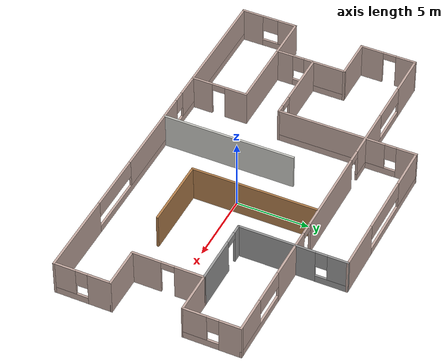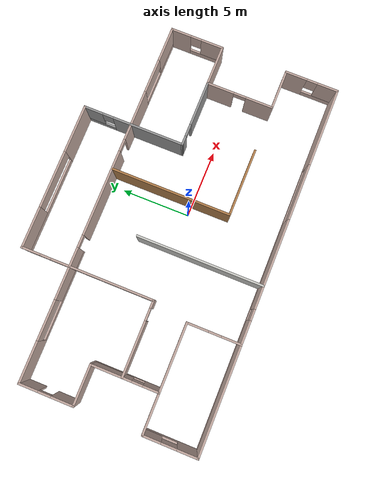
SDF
<?xml version='1.0'?>
<sdf version='1.6'>
  <model name='single_floor'>
    <pose frame=''>-1.52056 1.42909 0 0 -0 0</pose>
    <link name='Wall_12'>
      <pose frame=''>0 4.5203 0 0 -0 0</pose>
      <visual name='Wall_12_Visual_0'>
        <pose frame=''>-11.8654 0 1.25 0 -0 0</pose>
        <geometry>
          <box>
            <size>3.0192 0.15 2.5</size>
          </box>
        </geometry>
        <material>
          <script>
            <uri>file://media/materials/scripts/gazebo.material</uri>
            <name>Gazebo/Grey</name>
          </script>
          <ambient>0.760784 0.662745 0.627451 1</ambient>
        </material>
        <meta>
          <layer>0</layer>
        </meta>
      </visual>
      <collision name='Wall_12_Collision_0'>
        <geometry>
          <box>
            <size>3.0192 0.15 2.5</size>
          </box>
        </geometry>
        <pose frame=''>-11.8654 0 1.25 0 -0 0</pose>
      </collision>
      <visual name='Wall_12_Visual_1'>
        <pose frame=''>0.396367 0 1.25 0 -0 0</pose>
        <geometry>
          <box>
            <size>6.35864 0.15 2.5</size>
          </box>
        </geometry>
        <material>
          <script>
            <uri>file://media/materials/scripts/gazebo.material</uri>
            <name>Gazebo/Grey</name>
          </script>
          <ambient>0.760784 0.662745 0.627451 1</ambient>
        </material>
        <meta>
          <layer>0</layer>
        </meta>
      </visual>
      <collision name='Wall_12_Collision_1'>
        <geometry>
          <box>
            <size>6.35864 0.15 2.5</size>
          </box>
        </geometry>
        <pose frame=''>0.396367 0 1.25 0 -0 0</pose>
      </collision>
      <visual name='Wall_12_Visual_2'>
        <pose frame=''>6.35303 0 1.25 0 -0 0</pose>
        <geometry>
          <box>
            <size>3.75468 0.15 2.5</size>
          </box>
        </geometry>
        <material>
          <script>
            <uri>file://media/materials/scripts/gazebo.material</uri>
            <name>Gazebo/Grey</name>
          </script>
          <ambient>0.760784 0.662745 0.627451 1</ambient>
        </material>
        <meta>
          <layer>0</layer>
        </meta>
      </visual>
      <collision name='Wall_12_Collision_2'>
        <geometry>
          <box>
            <size>3.75468 0.15 2.5</size>
          </box>
        </geometry>
        <pose frame=''>6.35303 0 1.25 0 -0 0</pose>
      </collision>
      <visual name='Wall_12_Visual_3'>
        <pose frame=''>-7.01938 0 0.25 0 -0 0</pose>
        <geometry>
          <box>
            <size>6.67285 0.15 0.5</size>
          </box>
        </geometry>
        <material>
          <script>
            <uri>file://media/materials/scripts/gazebo.material</uri>
            <name>Gazebo/Grey</name>
          </script>
          <ambient>0.760784 0.662745 0.627451 1</ambient>
        </material>
        <meta>
          <layer>0</layer>
        </meta>
      </visual>
      <collision name='Wall_12_Collision_3'>
        <geometry>
          <box>
            <size>6.67285 0.15 0.5</size>
          </box>
        </geometry>
        <pose frame=''>-7.01938 0 0.25 0 -0 0</pose>
      </collision>
      <visual name='Wall_12_Visual_4'>
        <pose frame=''>10.8027 0 0.25 0 -0 0</pose>
        <geometry>
          <box>
            <size>5.14463 0.15 0.5</size>
          </box>
        </geometry>
        <material>
          <script>
            <uri>file://media/materials/scripts/gazebo.material</uri>
            <name>Gazebo/Grey</name>
          </script>
          <ambient>0.760784 0.662745 0.627451 1</ambient>
        </material>
        <meta>
          <layer>0</layer>
        </meta>
      </visual>
      <collision name='Wall_12_Collision_4'>
        <geometry>
          <box>
            <size>5.14463 0.15 0.5</size>
          </box>
        </geometry>
        <pose frame=''>10.8027 0 0.25 0 -0 0</pose>
      </collision>
      <visual name='Wall_12_Visual_5'>
        <pose frame=''>-5.57131 0 1.5 0 -0 0</pose>
        <geometry>
          <box>
            <size>3.77672 0.15 2</size>
          </box>
        </geometry>
        <material>
          <script>
            <uri>file://media/materials/scripts/gazebo.material</uri>
            <name>Gazebo/Grey</name>
          </script>
          <ambient>0.760784 0.662745 0.627451 1</ambient>
        </material>
        <meta>
          <layer>0</layer>
        </meta>
      </visual>
      <collision name='Wall_12_Collision_5'>
        <geometry>
          <box>
            <size>3.77672 0.15 2</size>
          </box>
        </geometry>
        <pose frame=''>-5.57131 0 1.5 0 -0 0</pose>
      </collision>
      <visual name='Wall_12_Visual_6'>
        <pose frame=''>-5.57131 0 1.5 0 -0 0</pose>
        <geometry>
          <box>
            <size>3.77672 0.15 2</size>
          </box>
        </geometry>
        <material>
          <script>
            <uri>file://media/materials/scripts/gazebo.material</uri>
            <name>Gazebo/Grey</name>
          </script>
          <ambient>0.760784 0.662745 0.627451 1</ambient>
        </material>
        <meta>
          <layer>0</layer>
        </meta>
      </visual>
      <collision name='Wall_12_Collision_6'>
        <geometry>
          <box>
            <size>3.77672 0.15 2</size>
          </box>
        </geometry>
        <pose frame=''>-5.57131 0 1.5 0 -0 0</pose>
      </collision>
      <visual name='Wall_12_Visual_7'>
        <pose frame=''>12.0657 0 1.5 0 -0 0</pose>
        <geometry>
          <box>
            <size>2.61859 0.15 2</size>
          </box>
        </geometry>
        <material>
          <script>
            <uri>file://media/materials/scripts/gazebo.material</uri>
            <name>Gazebo/Grey</name>
          </script>
          <ambient>0.760784 0.662745 0.627451 1</ambient>
        </material>
        <meta>
          <layer>0</layer>
        </meta>
      </visual>
      <collision name='Wall_12_Collision_7'>
        <geometry>
          <box>
            <size>2.61859 0.15 2</size>
          </box>
        </geometry>
        <pose frame=''>12.0657 0 1.5 0 -0 0</pose>
      </collision>
      <visual name='Wall_12_Visual_8'>
        <pose frame=''>-8.90774 0 1.9 0 -0 0</pose>
        <geometry>
          <box>
            <size>2.89613 0.15 1.2</size>
          </box>
        </geometry>
        <material>
          <script>
            <uri>file://media/materials/scripts/gazebo.material</uri>
            <name>Gazebo/Grey</name>
          </script>
          <ambient>0.760784 0.662745 0.627451 1</ambient>
        </material>
        <meta>
          <layer>0</layer>
        </meta>
      </visual>
      <collision name='Wall_12_Collision_8'>
        <geometry>
          <box>
            <size>2.89613 0.15 1.2</size>
          </box>
        </geometry>
        <pose frame=''>-8.90774 0 1.9 0 -0 0</pose>
      </collision>
      <visual name='Wall_12_Visual_9'>
        <pose frame=''>9.49339 0 1.9 0 -0 0</pose>
        <geometry>
          <box>
            <size>2.52604 0.15 1.2</size>
          </box>
        </geometry>
        <material>
          <script>
            <uri>file://media/materials/scripts/gazebo.material</uri>
            <name>Gazebo/Grey</name>
          </script>
          <ambient>0.760784 0.662745 0.627451 1</ambient>
        </material>
        <meta>
          <layer>0</layer>
        </meta>
      </visual>
      <collision name='Wall_12_Collision_9'>
        <geometry>
          <box>
            <size>2.52604 0.15 1.2</size>
          </box>
        </geometry>
        <pose frame=''>9.49339 0 1.9 0 -0 0</pose>
      </collision>
      <visual name='Wall_12_Visual_10'>
        <pose frame=''>4.02569 0 2.25 0 -0 0</pose>
        <geometry>
          <box>
            <size>0.9 0.15 0.5</size>
          </box>
        </geometry>
        <material>
          <script>
            <uri>file://media/materials/scripts/gazebo.material</uri>
            <name>Gazebo/Grey</name>
          </script>
          <ambient>0.760784 0.662745 0.627451 1</ambient>
        </material>
        <meta>
          <layer>0</layer>
        </meta>
      </visual>
      <collision name='Wall_12_Collision_10'>
        <geometry>
          <box>
            <size>0.9 0.15 0.5</size>
          </box>
        </geometry>
        <pose frame=''>4.02569 0 2.25 0 -0 0</pose>
      </collision>
      <visual name='Wall_12_Visual_11'>
        <pose frame=''>-3.23295 0 2.25 0 -0 0</pose>
        <geometry>
          <box>
            <size>0.9 0.15 0.5</size>
          </box>
        </geometry>
        <material>
          <script>
            <uri>file://media/materials/scripts/gazebo.material</uri>
            <name>Gazebo/Grey</name>
          </script>
          <ambient>0.760784 0.662745 0.627451 1</ambient>
        </material>
        <meta>
          <layer>0</layer>
        </meta>
      </visual>
      <collision name='Wall_12_Collision_11'>
        <geometry>
          <box>
            <size>0.9 0.15 0.5</size>
          </box>
        </geometry>
        <pose frame=''>-3.23295 0 2.25 0 -0 0</pose>
      </collision>
      <visual name='Wall_12_Visual_12'>
        <pose frame=''>-3.23295 0 2.25 0 -0 0</pose>
        <geometry>
          <box>
            <size>0.9 0.15 0.5</size>
          </box>
        </geometry>
        <material>
          <script>
            <uri>file://media/materials/scripts/gazebo.material</uri>
            <name>Gazebo/Grey</name>
          </script>
          <ambient>0.760784 0.662745 0.627451 1</ambient>
        </material>
        <meta>
          <layer>0</layer>
        </meta>
      </visual>
      <collision name='Wall_12_Collision_12'>
        <geometry>
          <box>
            <size>0.9 0.15 0.5</size>
          </box>
        </geometry>
        <pose frame=''>-3.23295 0 2.25 0 -0 0</pose>
      </collision>
    </link>
    <link name='Wall_124'>
      <pose frame=''>0.326152 8.01661 0 0 -0 3.14159</pose>
      <visual name='Wall_124_Visual_0'>
        <pose frame=''>-3.58525 0 1.25 0 -0 0</pose>
        <geometry>
          <box>
            <size>3.5795 0.15 2.5</size>
          </box>
        </geometry>
        <material>
          <script>
            <uri>file://media/materials/scripts/gazebo.material</uri>
            <name>Gazebo/Grey</name>
          </script>
          <ambient>0.760784 0.662745 0.627451 1</ambient>
        </material>
        <meta>
          <layer>0</layer>
        </meta>
      </visual>
      <collision name='Wall_124_Collision_0'>
        <geometry>
          <box>
            <size>3.5795 0.15 2.5</size>
          </box>
        </geometry>
        <pose frame=''>-3.58525 0 1.25 0 -0 0</pose>
      </collision>
      <visual name='Wall_124_Visual_1'>
        <pose frame=''>1.78975 0 0.25 0 -0 0</pose>
        <geometry>
          <box>
            <size>7.17051 0.15 0.5</size>
          </box>
        </geometry>
        <material>
          <script>
            <uri>file://media/materials/scripts/gazebo.material</uri>
            <name>Gazebo/Grey</name>
          </script>
          <ambient>0.760784 0.662745 0.627451 1</ambient>
        </material>
        <meta>
          <layer>0</layer>
        </meta>
      </visual>
      <collision name='Wall_124_Collision_1'>
        <geometry>
          <box>
            <size>7.17051 0.15 0.5</size>
          </box>
        </geometry>
        <pose frame=''>1.78975 0 0.25 0 -0 0</pose>
      </collision>
      <visual name='Wall_124_Visual_2'>
        <pose frame=''>3.89635 0 1.5 0 -0 0</pose>
        <geometry>
          <box>
            <size>2.9573 0.15 2</size>
          </box>
        </geometry>
        <material>
          <script>
            <uri>file://media/materials/scripts/gazebo.material</uri>
            <name>Gazebo/Grey</name>
          </script>
          <ambient>0.760784 0.662745 0.627451 1</ambient>
        </material>
        <meta>
          <layer>0</layer>
        </meta>
      </visual>
      <collision name='Wall_124_Collision_2'>
        <geometry>
          <box>
            <size>2.9573 0.15 2</size>
          </box>
        </geometry>
        <pose frame=''>3.89635 0 1.5 0 -0 0</pose>
      </collision>
      <visual name='Wall_124_Visual_3'>
        <pose frame=''>0.3111 0 1.9 0 -0 0</pose>
        <geometry>
          <box>
            <size>4.21321 0.15 1.2</size>
          </box>
        </geometry>
        <material>
          <script>
            <uri>file://media/materials/scripts/gazebo.material</uri>
            <name>Gazebo/Grey</name>
          </script>
          <ambient>0.760784 0.662745 0.627451 1</ambient>
        </material>
        <meta>
          <layer>0</layer>
        </meta>
      </visual>
      <collision name='Wall_124_Collision_3'>
        <geometry>
          <box>
            <size>4.21321 0.15 1.2</size>
          </box>
        </geometry>
        <pose frame=''>0.3111 0 1.9 0 -0 0</pose>
      </collision>
    </link>
    <link name='Wall_13'>
      <pose frame=''>13.3 2.59531 0 0 0 -1.5708</pose>
      <visual name='Wall_13_Visual_0'>
        <pose frame=''>-1.23668 0 1.25 0 -0 0</pose>
        <geometry>
          <box>
            <size>1.52664 0.15 2.5</size>
          </box>
        </geometry>
        <material>
          <script>
            <uri>file://media/materials/scripts/gazebo.material</uri>
            <name>Gazebo/Grey</name>
          </script>
          <ambient>0.760784 0.662745 0.627451 1</ambient>
        </material>
        <meta>
          <layer>0</layer>
        </meta>
      </visual>
      <collision name='Wall_13_Collision_0'>
        <geometry>
          <box>
            <size>1.52664 0.15 2.5</size>
          </box>
        </geometry>
        <pose frame=''>-1.23668 0 1.25 0 -0 0</pose>
      </collision>
      <visual name='Wall_13_Visual_1'>
        <pose frame=''>0.76332 0 0.25 0 -0 0</pose>
        <geometry>
          <box>
            <size>2.47336 0.15 0.5</size>
          </box>
        </geometry>
        <material>
          <script>
            <uri>file://media/materials/scripts/gazebo.material</uri>
            <name>Gazebo/Grey</name>
          </script>
          <ambient>0.760784 0.662745 0.627451 1</ambient>
        </material>
        <meta>
          <layer>0</layer>
        </meta>
      </visual>
      <collision name='Wall_13_Collision_1'>
        <geometry>
          <box>
            <size>2.47336 0.15 0.5</size>
          </box>
        </geometry>
        <pose frame=''>0.76332 0 0.25 0 -0 0</pose>
      </collision>
      <visual name='Wall_13_Visual_2'>
        <pose frame=''>1.16332 0 1.5 0 -0 0</pose>
        <geometry>
          <box>
            <size>1.67336 0.15 2</size>
          </box>
        </geometry>
        <material>
          <script>
            <uri>file://media/materials/scripts/gazebo.material</uri>
            <name>Gazebo/Grey</name>
          </script>
          <ambient>0.760784 0.662745 0.627451 1</ambient>
        </material>
        <meta>
          <layer>0</layer>
        </meta>
      </visual>
      <collision name='Wall_13_Collision_2'>
        <geometry>
          <box>
            <size>1.67336 0.15 2</size>
          </box>
        </geometry>
        <pose frame=''>1.16332 0 1.5 0 -0 0</pose>
      </collision>
      <visual name='Wall_13_Visual_3'>
        <pose frame=''>-0.07336 0 1.9 0 -0 0</pose>
        <geometry>
          <box>
            <size>0.8 0.15 1.2</size>
          </box>
        </geometry>
        <material>
          <script>
            <uri>file://media/materials/scripts/gazebo.material</uri>
            <name>Gazebo/Grey</name>
          </script>
          <ambient>0.760784 0.662745 0.627451 1</ambient>
        </material>
        <meta>
          <layer>0</layer>
        </meta>
      </visual>
      <collision name='Wall_13_Collision_3'>
        <geometry>
          <box>
            <size>0.8 0.15 1.2</size>
          </box>
        </geometry>
        <pose frame=''>-0.07336 0 1.9 0 -0 0</pose>
      </collision>
    </link>
    <link name='Wall_14'>
      <collision name='Wall_14_Collision'>
        <geometry>
          <box>
            <size>3 0.15 2.5</size>
          </box>
        </geometry>
        <pose frame=''>0 0 1.25 0 -0 0</pose>
      </collision>
      <visual name='Wall_14_Visual'>
        <pose frame=''>0 0 1.25 0 -0 0</pose>
        <geometry>
          <box>
            <size>3 0.15 2.5</size>
          </box>
        </geometry>
        <material>
          <script>
            <uri>file://media/materials/scripts/gazebo.material</uri>
            <name>Gazebo/Grey</name>
          </script>
          <ambient>0.760784 0.662745 0.627451 1</ambient>
        </material>
        <meta>
          <layer>0</layer>
        </meta>
      </visual>
      <pose frame=''>11.875 0.670305 0 0 -0 3.14159</pose>
    </link>
    <link name='Wall_15'>
      <pose frame=''>10.45 -1.75469 0 0 0 -1.5708</pose>
      <visual name='Wall_15_Visual_0'>
        <pose frame=''>-1.46979 0 1.25 0 -0 0</pose>
        <geometry>
          <box>
            <size>2.06043 0.15 2.5</size>
          </box>
        </geometry>
        <material>
          <script>
            <uri>file://media/materials/scripts/gazebo.material</uri>
            <name>Gazebo/Grey</name>
          </script>
          <ambient>0.760784 0.662745 0.627451 1</ambient>
        </material>
        <meta>
          <layer>0</layer>
        </meta>
      </visual>
      <collision name='Wall_15_Collision_0'>
        <geometry>
          <box>
            <size>2.06043 0.15 2.5</size>
          </box>
        </geometry>
        <pose frame=''>-1.46979 0 1.25 0 -0 0</pose>
      </collision>
      <visual name='Wall_15_Visual_1'>
        <pose frame=''>1.48021 0 1.25 0 -0 0</pose>
        <geometry>
          <box>
            <size>2.03957 0.15 2.5</size>
          </box>
        </geometry>
        <material>
          <script>
            <uri>file://media/materials/scripts/gazebo.material</uri>
            <name>Gazebo/Grey</name>
          </script>
          <ambient>0.760784 0.662745 0.627451 1</ambient>
        </material>
        <meta>
          <layer>0</layer>
        </meta>
      </visual>
      <collision name='Wall_15_Collision_1'>
        <geometry>
          <box>
            <size>2.03957 0.15 2.5</size>
          </box>
        </geometry>
        <pose frame=''>1.48021 0 1.25 0 -0 0</pose>
      </collision>
      <visual name='Wall_15_Visual_2'>
        <pose frame=''>0.010427 0 2.25 0 -0 0</pose>
        <geometry>
          <box>
            <size>0.9 0.15 0.5</size>
          </box>
        </geometry>
        <material>
          <script>
            <uri>file://media/materials/scripts/gazebo.material</uri>
            <name>Gazebo/Grey</name>
          </script>
          <ambient>0.760784 0.662745 0.627451 1</ambient>
        </material>
        <meta>
          <layer>0</layer>
        </meta>
      </visual>
      <collision name='Wall_15_Collision_2'>
        <geometry>
          <box>
            <size>0.9 0.15 0.5</size>
          </box>
        </geometry>
        <pose frame=''>0.010427 0 2.25 0 -0 0</pose>
      </collision>
    </link>
    <link name='Wall_16'>
      <collision name='Wall_16_Collision'>
        <geometry>
          <box>
            <size>3 0.15 2.5</size>
          </box>
        </geometry>
        <pose frame=''>0 0 1.25 0 -0 0</pose>
      </collision>
      <visual name='Wall_16_Visual'>
        <pose frame=''>0 0 1.25 0 -0 0</pose>
        <geometry>
          <box>
            <size>3 0.15 2.5</size>
          </box>
        </geometry>
        <material>
          <script>
            <uri>file://media/materials/scripts/gazebo.material</uri>
            <name>Gazebo/Grey</name>
          </script>
          <ambient>0.760784 0.662745 0.627451 1</ambient>
        </material>
        <meta>
          <layer>0</layer>
        </meta>
      </visual>
      <pose frame=''>11.875 -4.17969 0 0 -0 0</pose>
    </link>
    <link name='Wall_17'>
      <pose frame=''>13.3 -6.1047 0 0 0 -1.5708</pose>
      <visual name='Wall_17_Visual_0'>
        <pose frame=''>-1.18199 0 1.25 0 -0 0</pose>
        <geometry>
          <box>
            <size>1.63601 0.15 2.5</size>
          </box>
        </geometry>
        <material>
          <script>
            <uri>file://media/materials/scripts/gazebo.material</uri>
            <name>Gazebo/Grey</name>
          </script>
          <ambient>0.760784 0.662745 0.627451 1</ambient>
        </material>
        <meta>
          <layer>0</layer>
        </meta>
      </visual>
      <collision name='Wall_17_Collision_0'>
        <geometry>
          <box>
            <size>1.63601 0.15 2.5</size>
          </box>
        </geometry>
        <pose frame=''>-1.18199 0 1.25 0 -0 0</pose>
      </collision>
      <visual name='Wall_17_Visual_1'>
        <pose frame=''>0.818006 0 0.25 0 -0 0</pose>
        <geometry>
          <box>
            <size>2.36399 0.15 0.5</size>
          </box>
        </geometry>
        <material>
          <script>
            <uri>file://media/materials/scripts/gazebo.material</uri>
            <name>Gazebo/Grey</name>
          </script>
          <ambient>0.760784 0.662745 0.627451 1</ambient>
        </material>
        <meta>
          <layer>0</layer>
        </meta>
      </visual>
      <collision name='Wall_17_Collision_1'>
        <geometry>
          <box>
            <size>2.36399 0.15 0.5</size>
          </box>
        </geometry>
        <pose frame=''>0.818006 0 0.25 0 -0 0</pose>
      </collision>
      <visual name='Wall_17_Visual_2'>
        <pose frame=''>1.21801 0 1.5 0 -0 0</pose>
        <geometry>
          <box>
            <size>1.56399 0.15 2</size>
          </box>
        </geometry>
        <material>
          <script>
            <uri>file://media/materials/scripts/gazebo.material</uri>
            <name>Gazebo/Grey</name>
          </script>
          <ambient>0.760784 0.662745 0.627451 1</ambient>
        </material>
        <meta>
          <layer>0</layer>
        </meta>
      </visual>
      <collision name='Wall_17_Collision_2'>
        <geometry>
          <box>
            <size>1.56399 0.15 2</size>
          </box>
        </geometry>
        <pose frame=''>1.21801 0 1.5 0 -0 0</pose>
      </collision>
      <visual name='Wall_17_Visual_3'>
        <pose frame=''>0.036011 0 1.9 0 -0 0</pose>
        <geometry>
          <box>
            <size>0.8 0.15 1.2</size>
          </box>
        </geometry>
        <material>
          <script>
            <uri>file://media/materials/scripts/gazebo.material</uri>
            <name>Gazebo/Grey</name>
          </script>
          <ambient>0.760784 0.662745 0.627451 1</ambient>
        </material>
        <meta>
          <layer>0</layer>
        </meta>
      </visual>
      <collision name='Wall_17_Collision_3'>
        <geometry>
          <box>
            <size>0.8 0.15 1.2</size>
          </box>
        </geometry>
        <pose frame=''>0.036011 0 1.9 0 -0 0</pose>
      </collision>
    </link>
    <link name='Wall_18'>
      <pose frame=''>0 -8.0297 0 0 -0 3.14159</pose>
      <visual name='Wall_18_Visual_0'>
        <pose frame=''>-10.4624 0 1.25 0 -0 0</pose>
        <geometry>
          <box>
            <size>5.82521 0.15 2.5</size>
          </box>
        </geometry>
        <material>
          <script>
            <uri>file://media/materials/scripts/gazebo.material</uri>
            <name>Gazebo/Grey</name>
          </script>
          <ambient>0.760784 0.662745 0.627451 1</ambient>
        </material>
        <meta>
          <layer>0</layer>
        </meta>
      </visual>
      <collision name='Wall_18_Collision_0'>
        <geometry>
          <box>
            <size>5.82521 0.15 2.5</size>
          </box>
        </geometry>
        <pose frame=''>-10.4624 0 1.25 0 -0 0</pose>
      </collision>
      <visual name='Wall_18_Visual_1'>
        <pose frame=''>2.9126 0 0.25 0 -0 0</pose>
        <geometry>
          <box>
            <size>20.9248 0.15 0.5</size>
          </box>
        </geometry>
        <material>
          <script>
            <uri>file://media/materials/scripts/gazebo.material</uri>
            <name>Gazebo/Grey</name>
          </script>
          <ambient>0.760784 0.662745 0.627451 1</ambient>
        </material>
        <meta>
          <layer>0</layer>
        </meta>
      </visual>
      <collision name='Wall_18_Collision_1'>
        <geometry>
          <box>
            <size>20.9248 0.15 0.5</size>
          </box>
        </geometry>
        <pose frame=''>2.9126 0 0.25 0 -0 0</pose>
      </collision>
      <visual name='Wall_18_Visual_2'>
        <pose frame=''>-0.153899 0 1.5 0 -0 0</pose>
        <geometry>
          <box>
            <size>6.51142 0.15 2</size>
          </box>
        </geometry>
        <material>
          <script>
            <uri>file://media/materials/scripts/gazebo.material</uri>
            <name>Gazebo/Grey</name>
          </script>
          <ambient>0.760784 0.662745 0.627451 1</ambient>
        </material>
        <meta>
          <layer>0</layer>
        </meta>
      </visual>
      <collision name='Wall_18_Collision_2'>
        <geometry>
          <box>
            <size>6.51142 0.15 2</size>
          </box>
        </geometry>
        <pose frame=''>-0.153899 0 1.5 0 -0 0</pose>
      </collision>
      <visual name='Wall_18_Visual_3'>
        <pose frame=''>8.63841 0 1.5 0 -0 0</pose>
        <geometry>
          <box>
            <size>9.47319 0.15 2</size>
          </box>
        </geometry>
        <material>
          <script>
            <uri>file://media/materials/scripts/gazebo.material</uri>
            <name>Gazebo/Grey</name>
          </script>
          <ambient>0.760784 0.662745 0.627451 1</ambient>
        </material>
        <meta>
          <layer>0</layer>
        </meta>
      </visual>
      <collision name='Wall_18_Collision_3'>
        <geometry>
          <box>
            <size>9.47319 0.15 2</size>
          </box>
        </geometry>
        <pose frame=''>8.63841 0 1.5 0 -0 0</pose>
      </collision>
      <visual name='Wall_18_Visual_4'>
        <pose frame=''>-5.4797 0 1.9 0 -0 0</pose>
        <geometry>
          <box>
            <size>4.14018 0.15 1.2</size>
          </box>
        </geometry>
        <material>
          <script>
            <uri>file://media/materials/scripts/gazebo.material</uri>
            <name>Gazebo/Grey</name>
          </script>
          <ambient>0.760784 0.662745 0.627451 1</ambient>
        </material>
        <meta>
          <layer>0</layer>
        </meta>
      </visual>
      <collision name='Wall_18_Collision_4'>
        <geometry>
          <box>
            <size>4.14018 0.15 1.2</size>
          </box>
        </geometry>
        <pose frame=''>-5.4797 0 1.9 0 -0 0</pose>
      </collision>
      <visual name='Wall_18_Visual_5'>
        <pose frame=''>3.50181 0 1.9 0 -0 0</pose>
        <geometry>
          <box>
            <size>0.8 0.15 1.2</size>
          </box>
        </geometry>
        <material>
          <script>
            <uri>file://media/materials/scripts/gazebo.material</uri>
            <name>Gazebo/Grey</name>
          </script>
          <ambient>0.760784 0.662745 0.627451 1</ambient>
        </material>
        <meta>
          <layer>0</layer>
        </meta>
      </visual>
      <collision name='Wall_18_Collision_5'>
        <geometry>
          <box>
            <size>0.8 0.15 1.2</size>
          </box>
        </geometry>
        <pose frame=''>3.50181 0 1.9 0 -0 0</pose>
      </collision>
    </link>
    <link name='Wall_19'>
      <pose frame=''>-13.3 -6.1047 0 0 -0 1.5708</pose>
      <visual name='Wall_19_Visual_0'>
        <pose frame=''>-1.22646 0 1.25 0 -0 0</pose>
        <geometry>
          <box>
            <size>1.54707 0.15 2.5</size>
          </box>
        </geometry>
        <material>
          <script>
            <uri>file://media/materials/scripts/gazebo.material</uri>
            <name>Gazebo/Grey</name>
          </script>
          <ambient>0.760784 0.662745 0.627451 1</ambient>
        </material>
        <meta>
          <layer>0</layer>
        </meta>
      </visual>
      <collision name='Wall_19_Collision_0'>
        <geometry>
          <box>
            <size>1.54707 0.15 2.5</size>
          </box>
        </geometry>
        <pose frame=''>-1.22646 0 1.25 0 -0 0</pose>
      </collision>
      <visual name='Wall_19_Visual_1'>
        <pose frame=''>0.773535 0 0.25 0 -0 0</pose>
        <geometry>
          <box>
            <size>2.45293 0.15 0.5</size>
          </box>
        </geometry>
        <material>
          <script>
            <uri>file://media/materials/scripts/gazebo.material</uri>
            <name>Gazebo/Grey</name>
          </script>
          <ambient>0.760784 0.662745 0.627451 1</ambient>
        </material>
        <meta>
          <layer>0</layer>
        </meta>
      </visual>
      <collision name='Wall_19_Collision_1'>
        <geometry>
          <box>
            <size>2.45293 0.15 0.5</size>
          </box>
        </geometry>
        <pose frame=''>0.773535 0 0.25 0 -0 0</pose>
      </collision>
      <visual name='Wall_19_Visual_2'>
        <pose frame=''>1.32306 0 1.5 0 -0 0</pose>
        <geometry>
          <box>
            <size>1.35388 0.15 2</size>
          </box>
        </geometry>
        <material>
          <script>
            <uri>file://media/materials/scripts/gazebo.material</uri>
            <name>Gazebo/Grey</name>
          </script>
          <ambient>0.760784 0.662745 0.627451 1</ambient>
        </material>
        <meta>
          <layer>0</layer>
        </meta>
      </visual>
      <collision name='Wall_19_Collision_2'>
        <geometry>
          <box>
            <size>1.35388 0.15 2</size>
          </box>
        </geometry>
        <pose frame=''>1.32306 0 1.5 0 -0 0</pose>
      </collision>
      <visual name='Wall_19_Visual_3'>
        <pose frame=''>0.096595 0 1.9 0 -0 0</pose>
        <geometry>
          <box>
            <size>1.09905 0.15 1.2</size>
          </box>
        </geometry>
        <material>
          <script>
            <uri>file://media/materials/scripts/gazebo.material</uri>
            <name>Gazebo/Grey</name>
          </script>
          <ambient>0.760784 0.662745 0.627451 1</ambient>
        </material>
        <meta>
          <layer>0</layer>
        </meta>
      </visual>
      <collision name='Wall_19_Collision_3'>
        <geometry>
          <box>
            <size>1.09905 0.15 1.2</size>
          </box>
        </geometry>
        <pose frame=''>0.096595 0 1.9 0 -0 0</pose>
      </collision>
    </link>
    <link name='Wall_20'>
      <collision name='Wall_20_Collision'>
        <geometry>
          <box>
            <size>3 0.15 2.5</size>
          </box>
        </geometry>
        <pose frame=''>0 0 1.25 0 -0 0</pose>
      </collision>
      <visual name='Wall_20_Visual'>
        <pose frame=''>0 0 1.25 0 -0 0</pose>
        <geometry>
          <box>
            <size>3 0.15 2.5</size>
          </box>
        </geometry>
        <material>
          <script>
            <uri>file://media/materials/scripts/gazebo.material</uri>
            <name>Gazebo/Grey</name>
          </script>
          <ambient>0.760784 0.662745 0.627451 1</ambient>
        </material>
        <meta>
          <layer>0</layer>
        </meta>
      </visual>
      <pose frame=''>-11.875 -4.17969 0 0 -0 0</pose>
    </link>
    <link name='Wall_21'>
      <pose frame=''>-10.45 -1.75469 0 0 -0 1.5708</pose>
      <visual name='Wall_21_Visual_0'>
        <pose frame=''>-1.88532 0 1.25 0 -0 0</pose>
        <geometry>
          <box>
            <size>1.22936 0.15 2.5</size>
          </box>
        </geometry>
        <material>
          <script>
            <uri>file://media/materials/scripts/gazebo.material</uri>
            <name>Gazebo/Grey</name>
          </script>
          <ambient>0.760784 0.662745 0.627451 1</ambient>
        </material>
        <meta>
          <layer>0</layer>
        </meta>
      </visual>
      <collision name='Wall_21_Collision_0'>
        <geometry>
          <box>
            <size>1.22936 0.15 2.5</size>
          </box>
        </geometry>
        <pose frame=''>-1.88532 0 1.25 0 -0 0</pose>
      </collision>
      <visual name='Wall_21_Visual_1'>
        <pose frame=''>0.614679 0 0.25 0 -0 0</pose>
        <geometry>
          <box>
            <size>3.77064 0.15 0.5</size>
          </box>
        </geometry>
        <material>
          <script>
            <uri>file://media/materials/scripts/gazebo.material</uri>
            <name>Gazebo/Grey</name>
          </script>
          <ambient>0.760784 0.662745 0.627451 1</ambient>
        </material>
        <meta>
          <layer>0</layer>
        </meta>
      </visual>
      <collision name='Wall_21_Collision_1'>
        <geometry>
          <box>
            <size>3.77064 0.15 0.5</size>
          </box>
        </geometry>
        <pose frame=''>0.614679 0 0.25 0 -0 0</pose>
      </collision>
      <visual name='Wall_21_Visual_2'>
        <pose frame=''>1.01468 0 1.5 0 -0 0</pose>
        <geometry>
          <box>
            <size>2.97064 0.15 2</size>
          </box>
        </geometry>
        <material>
          <script>
            <uri>file://media/materials/scripts/gazebo.material</uri>
            <name>Gazebo/Grey</name>
          </script>
          <ambient>0.760784 0.662745 0.627451 1</ambient>
        </material>
        <meta>
          <layer>0</layer>
        </meta>
      </visual>
      <collision name='Wall_21_Collision_2'>
        <geometry>
          <box>
            <size>2.97064 0.15 2</size>
          </box>
        </geometry>
        <pose frame=''>1.01468 0 1.5 0 -0 0</pose>
      </collision>
      <visual name='Wall_21_Visual_3'>
        <pose frame=''>-0.870641 0 1.9 0 -0 0</pose>
        <geometry>
          <box>
            <size>0.8 0.15 1.2</size>
          </box>
        </geometry>
        <material>
          <script>
            <uri>file://media/materials/scripts/gazebo.material</uri>
            <name>Gazebo/Grey</name>
          </script>
          <ambient>0.760784 0.662745 0.627451 1</ambient>
        </material>
        <meta>
          <layer>0</layer>
        </meta>
      </visual>
      <collision name='Wall_21_Collision_3'>
        <geometry>
          <box>
            <size>0.8 0.15 1.2</size>
          </box>
        </geometry>
        <pose frame=''>-0.870641 0 1.9 0 -0 0</pose>
      </collision>
    </link>
    <link name='Wall_22'>
      <collision name='Wall_22_Collision'>
        <geometry>
          <box>
            <size>3 0.15 2.5</size>
          </box>
        </geometry>
        <pose frame=''>0 0 1.25 0 -0 0</pose>
      </collision>
      <visual name='Wall_22_Visual'>
        <pose frame=''>0 0 1.25 0 -0 0</pose>
        <geometry>
          <box>
            <size>3 0.15 2.5</size>
          </box>
        </geometry>
        <material>
          <script>
            <uri>file://media/materials/scripts/gazebo.material</uri>
            <name>Gazebo/Grey</name>
          </script>
          <ambient>0.760784 0.662745 0.627451 1</ambient>
        </material>
        <meta>
          <layer>0</layer>
        </meta>
      </visual>
      <pose frame=''>-11.875 0.670305 0 0 -0 3.14159</pose>
    </link>
    <link name='Wall_23'>
      <pose frame=''>-13.3 2.59531 0 0 -0 1.5708</pose>
      <visual name='Wall_23_Visual_0'>
        <pose frame=''>-1.16623 0 1.25 0 -0 0</pose>
        <geometry>
          <box>
            <size>1.66753 0.15 2.5</size>
          </box>
        </geometry>
        <material>
          <script>
            <uri>file://media/materials/scripts/gazebo.material</uri>
            <name>Gazebo/Grey</name>
          </script>
          <ambient>0.760784 0.662745 0.627451 1</ambient>
        </material>
        <meta>
          <layer>0</layer>
        </meta>
      </visual>
      <collision name='Wall_23_Collision_0'>
        <geometry>
          <box>
            <size>1.66753 0.15 2.5</size>
          </box>
        </geometry>
        <pose frame=''>-1.16623 0 1.25 0 -0 0</pose>
      </collision>
      <visual name='Wall_23_Visual_1'>
        <pose frame=''>1.28377 0 1.25 0 -0 0</pose>
        <geometry>
          <box>
            <size>1.43247 0.15 2.5</size>
          </box>
        </geometry>
        <material>
          <script>
            <uri>file://media/materials/scripts/gazebo.material</uri>
            <name>Gazebo/Grey</name>
          </script>
          <ambient>0.760784 0.662745 0.627451 1</ambient>
        </material>
        <meta>
          <layer>0</layer>
        </meta>
      </visual>
      <collision name='Wall_23_Collision_1'>
        <geometry>
          <box>
            <size>1.43247 0.15 2.5</size>
          </box>
        </geometry>
        <pose frame=''>1.28377 0 1.25 0 -0 0</pose>
      </collision>
      <visual name='Wall_23_Visual_2'>
        <pose frame=''>0.117534 0 2.25 0 -0 0</pose>
        <geometry>
          <box>
            <size>0.9 0.15 0.5</size>
          </box>
        </geometry>
        <material>
          <script>
            <uri>file://media/materials/scripts/gazebo.material</uri>
            <name>Gazebo/Grey</name>
          </script>
          <ambient>0.760784 0.662745 0.627451 1</ambient>
        </material>
        <meta>
          <layer>0</layer>
        </meta>
      </visual>
      <collision name='Wall_23_Collision_2'>
        <geometry>
          <box>
            <size>0.9 0.15 0.5</size>
          </box>
        </geometry>
        <pose frame=''>0.117534 0 2.25 0 -0 0</pose>
      </collision>
    </link>
    <link name='Wall_26'>
      <pose frame=''>8.03808 0.668458 0 0 0 -3.14083</pose>
      <visual name='Wall_26_Visual_0'>
        <pose frame=''>-0.810666 0 1.25 0 -0 0</pose>
        <geometry>
          <box>
            <size>3.35252 0.15 2.5</size>
          </box>
        </geometry>
        <material>
          <script>
            <uri>file://media/materials/scripts/gazebo.material</uri>
            <name>Gazebo/Grey</name>
          </script>
          <ambient>1 1 1 1</ambient>
        </material>
        <meta>
          <layer>0</layer>
        </meta>
      </visual>
      <collision name='Wall_26_Collision_0'>
        <geometry>
          <box>
            <size>3.35252 0.15 2.5</size>
          </box>
        </geometry>
        <pose frame=''>-0.810666 0 1.25 0 -0 0</pose>
      </collision>
      <visual name='Wall_26_Visual_1'>
        <pose frame=''>2.12626 0 1.25 0 -0 0</pose>
        <geometry>
          <box>
            <size>0.721333 0.15 2.5</size>
          </box>
        </geometry>
        <material>
          <script>
            <uri>file://media/materials/scripts/gazebo.material</uri>
            <name>Gazebo/Grey</name>
          </script>
          <ambient>1 1 1 1</ambient>
        </material>
        <meta>
          <layer>0</layer>
        </meta>
      </visual>
      <collision name='Wall_26_Collision_1'>
        <geometry>
          <box>
            <size>0.721333 0.15 2.5</size>
          </box>
        </geometry>
        <pose frame=''>2.12626 0 1.25 0 -0 0</pose>
      </collision>
      <visual name='Wall_26_Visual_2'>
        <pose frame=''>1.31559 0 2.25 0 -0 0</pose>
        <geometry>
          <box>
            <size>0.9 0.15 0.5</size>
          </box>
        </geometry>
        <material>
          <script>
            <uri>file://media/materials/scripts/gazebo.material</uri>
            <name>Gazebo/Grey</name>
          </script>
          <ambient>1 1 1 1</ambient>
        </material>
        <meta>
          <layer>0</layer>
        </meta>
      </visual>
      <collision name='Wall_26_Collision_2'>
        <geometry>
          <box>
            <size>0.9 0.15 0.5</size>
          </box>
        </geometry>
        <pose frame=''>1.31559 0 2.25 0 -0 0</pose>
      </collision>
    </link>
    <link name='Wall_27'>
      <pose frame=''>5.62615 4.34161 0 0 -0 1.5708</pose>
      <visual name='Wall_27_Visual_0'>
        <pose frame=''>-1.11423 0 1.25 0 -0 0</pose>
        <geometry>
          <box>
            <size>5.27154 0.15 2.5</size>
          </box>
        </geometry>
        <material>
          <script>
            <uri>file://media/materials/scripts/gazebo.material</uri>
            <name>Gazebo/Grey</name>
          </script>
          <ambient>1 1 1 1</ambient>
        </material>
        <meta>
          <layer>0</layer>
        </meta>
      </visual>
      <collision name='Wall_27_Collision_0'>
        <geometry>
          <box>
            <size>5.27154 0.15 2.5</size>
          </box>
        </geometry>
        <pose frame=''>-1.11423 0 1.25 0 -0 0</pose>
      </collision>
      <visual name='Wall_27_Visual_1'>
        <pose frame=''>2.63577 0 0.25 0 -0 0</pose>
        <geometry>
          <box>
            <size>2.22846 0.15 0.5</size>
          </box>
        </geometry>
        <material>
          <script>
            <uri>file://media/materials/scripts/gazebo.material</uri>
            <name>Gazebo/Grey</name>
          </script>
          <ambient>1 1 1 1</ambient>
        </material>
        <meta>
          <layer>0</layer>
        </meta>
      </visual>
      <collision name='Wall_27_Collision_1'>
        <geometry>
          <box>
            <size>2.22846 0.15 0.5</size>
          </box>
        </geometry>
        <pose frame=''>2.63577 0 0.25 0 -0 0</pose>
      </collision>
      <visual name='Wall_27_Visual_2'>
        <pose frame=''>3.03577 0 1.5 0 -0 0</pose>
        <geometry>
          <box>
            <size>1.42847 0.15 2</size>
          </box>
        </geometry>
        <material>
          <script>
            <uri>file://media/materials/scripts/gazebo.material</uri>
            <name>Gazebo/Grey</name>
          </script>
          <ambient>1 1 1 1</ambient>
        </material>
        <meta>
          <layer>0</layer>
        </meta>
      </visual>
      <collision name='Wall_27_Collision_2'>
        <geometry>
          <box>
            <size>1.42847 0.15 2</size>
          </box>
        </geometry>
        <pose frame=''>3.03577 0 1.5 0 -0 0</pose>
      </collision>
      <visual name='Wall_27_Visual_3'>
        <pose frame=''>1.92153 0 1.9 0 -0 0</pose>
        <geometry>
          <box>
            <size>0.8 0.15 1.2</size>
          </box>
        </geometry>
        <material>
          <script>
            <uri>file://media/materials/scripts/gazebo.material</uri>
            <name>Gazebo/Grey</name>
          </script>
          <ambient>1 1 1 1</ambient>
        </material>
        <meta>
          <layer>0</layer>
        </meta>
      </visual>
      <collision name='Wall_27_Collision_3'>
        <geometry>
          <box>
            <size>0.8 0.15 1.2</size>
          </box>
        </geometry>
        <pose frame=''>1.92153 0 1.9 0 -0 0</pose>
      </collision>
    </link>
    <link name='Wall_29'>
      <collision name='Wall_29_Collision'>
        <geometry>
          <box>
            <size>5 0.15 2.5</size>
          </box>
        </geometry>
        <pose frame=''>0 0 1.25 0 -0 0</pose>
      </collision>
      <visual name='Wall_29_Visual'>
        <pose frame=''>0 0 1.25 0 -0 0</pose>
        <geometry>
          <box>
            <size>5 0.15 2.5</size>
          </box>
        </geometry>
        <material>
          <script>
            <uri>file://media/materials/scripts/gazebo.material</uri>
            <name>Gazebo/Grey</name>
          </script>
          <ambient>0.760784 0.662745 0.627451 1</ambient>
        </material>
        <meta>
          <layer>0</layer>
        </meta>
      </visual>
      <pose frame=''>-8.025 -4.17969 0 0 -0 0</pose>
    </link>
    <link name='Wall_30'>
      <pose frame=''>-5.6 -6.1047 0 0 0 -1.5708</pose>
      <visual name='Wall_30_Visual_0'>
        <pose frame=''>-1.19988 0 1.25 0 -0 0</pose>
        <geometry>
          <box>
            <size>1.60024 0.15 2.5</size>
          </box>
        </geometry>
        <material>
          <script>
            <uri>file://media/materials/scripts/gazebo.material</uri>
            <name>Gazebo/Grey</name>
          </script>
          <ambient>0.760784 0.662745 0.627451 1</ambient>
        </material>
        <meta>
          <layer>0</layer>
        </meta>
      </visual>
      <collision name='Wall_30_Collision_0'>
        <geometry>
          <box>
            <size>1.60024 0.15 2.5</size>
          </box>
        </geometry>
        <pose frame=''>-1.19988 0 1.25 0 -0 0</pose>
      </collision>
      <visual name='Wall_30_Visual_1'>
        <pose frame=''>1.25012 0 1.25 0 -0 0</pose>
        <geometry>
          <box>
            <size>1.49976 0.15 2.5</size>
          </box>
        </geometry>
        <material>
          <script>
            <uri>file://media/materials/scripts/gazebo.material</uri>
            <name>Gazebo/Grey</name>
          </script>
          <ambient>0.760784 0.662745 0.627451 1</ambient>
        </material>
        <meta>
          <layer>0</layer>
        </meta>
      </visual>
      <collision name='Wall_30_Collision_1'>
        <geometry>
          <box>
            <size>1.49976 0.15 2.5</size>
          </box>
        </geometry>
        <pose frame=''>1.25012 0 1.25 0 -0 0</pose>
      </collision>
      <visual name='Wall_30_Visual_2'>
        <pose frame=''>0.050243 0 2.25 0 -0 0</pose>
        <geometry>
          <box>
            <size>0.9 0.15 0.5</size>
          </box>
        </geometry>
        <material>
          <script>
            <uri>file://media/materials/scripts/gazebo.material</uri>
            <name>Gazebo/Grey</name>
          </script>
          <ambient>0.760784 0.662745 0.627451 1</ambient>
        </material>
        <meta>
          <layer>0</layer>
        </meta>
      </visual>
      <collision name='Wall_30_Collision_2'>
        <geometry>
          <box>
            <size>0.9 0.15 0.5</size>
          </box>
        </geometry>
        <pose frame=''>0.050243 0 2.25 0 -0 0</pose>
      </collision>
    </link>
    <link name='Wall_34'>
      <collision name='Wall_34_Collision'>
        <geometry>
          <box>
            <size>8.75 0.15 2.5</size>
          </box>
        </geometry>
        <pose frame=''>0 0 1.25 0 -0 0</pose>
      </collision>
      <visual name='Wall_34_Visual'>
        <pose frame=''>0 0 1.25 0 -0 0</pose>
        <geometry>
          <box>
            <size>8.75 0.15 2.5</size>
          </box>
        </geometry>
        <material>
          <script>
            <uri>file://media/materials/scripts/gazebo.material</uri>
            <name>Gazebo/Wood</name>
          </script>
          <ambient>1 1 1 1</ambient>
        </material>
        <meta>
          <layer>0</layer>
        </meta>
      </visual>
      <pose frame=''>2.21994 0.116601 0 0 0 -1.5708</pose>
    </link>
    <link name='Wall_36'>
      <collision name='Wall_36_Collision'>
        <geometry>
          <box>
            <size>9.25 0.15 2.5</size>
          </box>
        </geometry>
        <pose frame=''>0 0 1.25 0 -0 0</pose>
      </collision>
      <visual name='Wall_36_Visual'>
        <pose frame=''>0 0 1.25 0 -0 0</pose>
        <geometry>
          <box>
            <size>9.25 0.15 2.5</size>
          </box>
        </geometry>
        <material>
          <script>
            <uri>file://media/materials/scripts/gazebo.material</uri>
            <name>Gazebo/CeilingTiled</name>
          </script>
          <ambient>1 1 1 1</ambient>
        </material>
        <meta>
          <layer>0</layer>
        </meta>
      </visual>
      <pose frame=''>-1.45082 -3.45693 0 0 -0 1.5708</pose>
    </link>
    <link name='Wall_38'>
      <pose frame=''>-5.06952 3.22969 0 0 0 -1.5708</pose>
      <visual name='Wall_38_Visual_0'>
        <pose frame=''>-4.16069 0 1.25 0 -0 0</pose>
        <geometry>
          <box>
            <size>1.42862 0.15 2.5</size>
          </box>
        </geometry>
        <material>
          <script>
            <uri>file://media/materials/scripts/gazebo.material</uri>
            <name>Gazebo/Grey</name>
          </script>
          <ambient>0.760784 0.662745 0.627451 1</ambient>
        </material>
        <meta>
          <layer>0</layer>
        </meta>
      </visual>
      <collision name='Wall_38_Collision_0'>
        <geometry>
          <box>
            <size>1.42862 0.15 2.5</size>
          </box>
        </geometry>
        <pose frame=''>-4.16069 0 1.25 0 -0 0</pose>
      </collision>
      <visual name='Wall_38_Visual_1'>
        <pose frame=''>0.714309 0 0.25 0 -0 0</pose>
        <geometry>
          <box>
            <size>8.32138 0.15 0.5</size>
          </box>
        </geometry>
        <material>
          <script>
            <uri>file://media/materials/scripts/gazebo.material</uri>
            <name>Gazebo/Grey</name>
          </script>
          <ambient>0.760784 0.662745 0.627451 1</ambient>
        </material>
        <meta>
          <layer>0</layer>
        </meta>
      </visual>
      <collision name='Wall_38_Collision_1'>
        <geometry>
          <box>
            <size>8.32138 0.15 0.5</size>
          </box>
        </geometry>
        <pose frame=''>0.714309 0 0.25 0 -0 0</pose>
      </collision>
      <visual name='Wall_38_Visual_2'>
        <pose frame=''>1.11431 0 1.5 0 -0 0</pose>
        <geometry>
          <box>
            <size>7.52138 0.15 2</size>
          </box>
        </geometry>
        <material>
          <script>
            <uri>file://media/materials/scripts/gazebo.material</uri>
            <name>Gazebo/Grey</name>
          </script>
          <ambient>0.760784 0.662745 0.627451 1</ambient>
        </material>
        <meta>
          <layer>0</layer>
        </meta>
      </visual>
      <collision name='Wall_38_Collision_2'>
        <geometry>
          <box>
            <size>7.52138 0.15 2</size>
          </box>
        </geometry>
        <pose frame=''>1.11431 0 1.5 0 -0 0</pose>
      </collision>
      <visual name='Wall_38_Visual_3'>
        <pose frame=''>-3.04638 0 1.9 0 -0 0</pose>
        <geometry>
          <box>
            <size>0.8 0.15 1.2</size>
          </box>
        </geometry>
        <material>
          <script>
            <uri>file://media/materials/scripts/gazebo.material</uri>
            <name>Gazebo/Grey</name>
          </script>
          <ambient>0.760784 0.662745 0.627451 1</ambient>
        </material>
        <meta>
          <layer>0</layer>
        </meta>
      </visual>
      <collision name='Wall_38_Collision_3'>
        <geometry>
          <box>
            <size>0.8 0.15 1.2</size>
          </box>
        </geometry>
        <pose frame=''>-3.04638 0 1.9 0 -0 0</pose>
      </collision>
    </link>
    <link name='Wall_39'>
      <pose frame=''>-7.74453 -1.57031 0 0 -0 3.14159</pose>
      <visual name='Wall_39_Visual_0'>
        <pose frame=''>-2.43789 0 1.25 0 -0 0</pose>
        <geometry>
          <box>
            <size>0.624218 0.15 2.5</size>
          </box>
        </geometry>
        <material>
          <script>
            <uri>file://media/materials/scripts/gazebo.material</uri>
            <name>Gazebo/Grey</name>
          </script>
          <ambient>0.760784 0.662745 0.627451 1</ambient>
        </material>
        <meta>
          <layer>0</layer>
        </meta>
      </visual>
      <collision name='Wall_39_Collision_0'>
        <geometry>
          <box>
            <size>0.624218 0.15 2.5</size>
          </box>
        </geometry>
        <pose frame=''>-2.43789 0 1.25 0 -0 0</pose>
      </collision>
      <visual name='Wall_39_Visual_1'>
        <pose frame=''>0.762109 0 1.25 0 -0 0</pose>
        <geometry>
          <box>
            <size>3.97578 0.15 2.5</size>
          </box>
        </geometry>
        <material>
          <script>
            <uri>file://media/materials/scripts/gazebo.material</uri>
            <name>Gazebo/Grey</name>
          </script>
          <ambient>0.760784 0.662745 0.627451 1</ambient>
        </material>
        <meta>
          <layer>0</layer>
        </meta>
      </visual>
      <collision name='Wall_39_Collision_1'>
        <geometry>
          <box>
            <size>3.97578 0.15 2.5</size>
          </box>
        </geometry>
        <pose frame=''>0.762109 0 1.25 0 -0 0</pose>
      </collision>
      <visual name='Wall_39_Visual_2'>
        <pose frame=''>-1.67578 0 2.25 0 -0 0</pose>
        <geometry>
          <box>
            <size>0.9 0.15 0.5</size>
          </box>
        </geometry>
        <material>
          <script>
            <uri>file://media/materials/scripts/gazebo.material</uri>
            <name>Gazebo/Grey</name>
          </script>
          <ambient>0.760784 0.662745 0.627451 1</ambient>
        </material>
        <meta>
          <layer>0</layer>
        </meta>
      </visual>
      <collision name='Wall_39_Collision_2'>
        <geometry>
          <box>
            <size>0.9 0.15 0.5</size>
          </box>
        </geometry>
        <pose frame=''>-1.67578 0 2.25 0 -0 0</pose>
      </collision>
    </link>
    <link name='Wall_41'>
      <collision name='Wall_41_Collision'>
        <geometry>
          <box>
            <size>5 0.15 2.5</size>
          </box>
        </geometry>
        <pose frame=''>0 0 1.25 0 -0 0</pose>
      </collision>
      <visual name='Wall_41_Visual'>
        <pose frame=''>0 0 1.25 0 -0 0</pose>
        <geometry>
          <box>
            <size>5 0.15 2.5</size>
          </box>
        </geometry>
        <material>
          <script>
            <uri>file://media/materials/scripts/gazebo.material</uri>
            <name>Gazebo/Wood</name>
          </script>
          <ambient>1 1 1 1</ambient>
        </material>
        <meta>
          <layer>0</layer>
        </meta>
      </visual>
      <pose frame=''>4.64494 -4.1834 0 0 -0 0</pose>
    </link>
    <static>1</static>
  </model>
</sdf>
